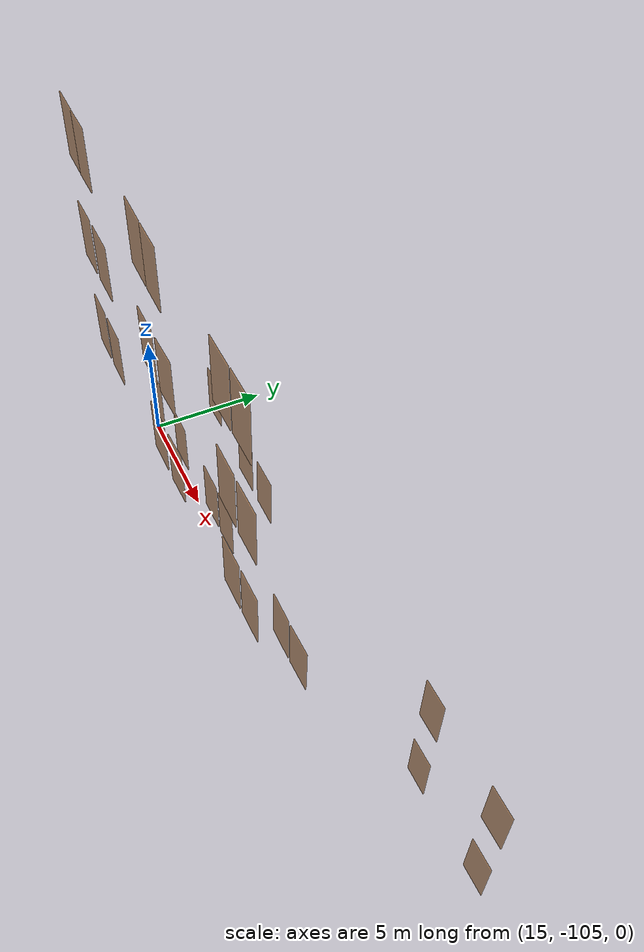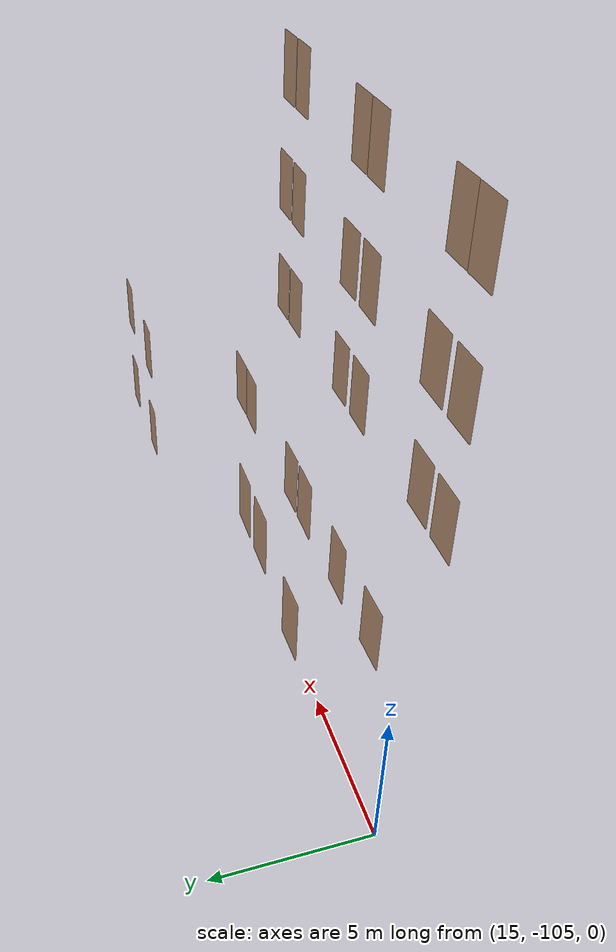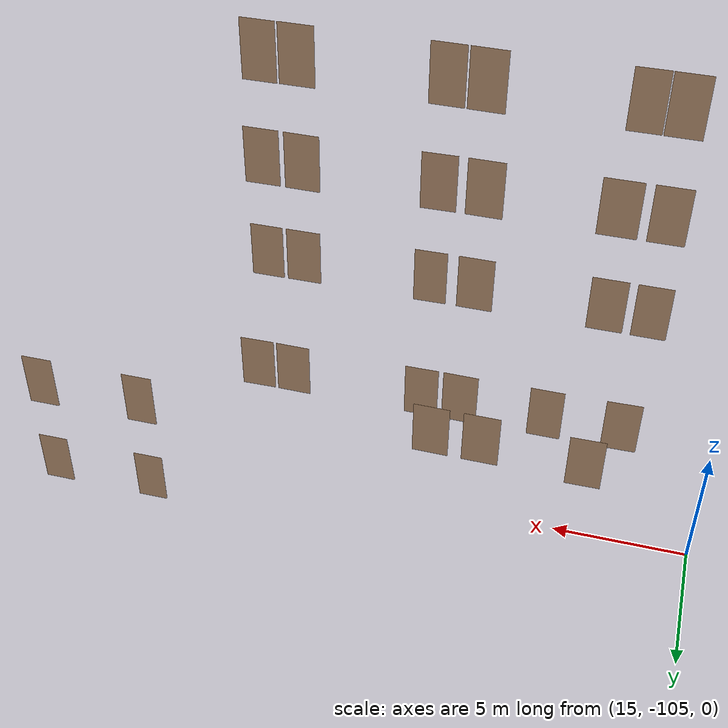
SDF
<sdf version="1.7">
 <world name="sim_world">
  <model name="Snull17">
   <pose>35.226505619236065 -102.68442668857105 0.0 0 0 3.141592653589793</pose>
   <link name="right">
    <pose>0 0 1.11 0 0 0</pose>
    <visual name="right_visual">
     <geometry><box><size>1.1178422880185204 0.03 2.2</size></box></geometry>
     <material>
      <ambient>0.5 0.25 0 0.6</ambient>
      <diffuse>0.5 0.25 0 0.6</diffuse>
      <pbr><metal><metalness>0.0</metalness></metal></pbr>
     </material>
    </visual>
    <collision name="right_collision">
     <geometry><box><size>1.1178422880185204 0.03 2.2</size></box></geometry>
     <surface><contact><collide_bitmask>0x02</collide_bitmask></contact></surface>
    </collision>
    <inertial>
     <mass>50.0</mass>
     <inertia><ixx>20.17041666666667</ixx><iyy>25.37321408701034</iyy><izz>5.210297420343669</izz></inertia>
    </inertial>
   </link>
   <joint name="right_joint" type="revolute">
    <parent>world</parent>
    <child>right</child>
    <axis><xyz>0 0 -1</xyz><limit><lower>0</lower><upper>1.57</upper></limit></axis>
    <pose>0.5639211440092602 0 0 0 0 0</pose>
   </joint>
   <plugin name="register_component" filename="libregister_component.so">
    <component name="Door">
     <v_max_door>0.5</v_max_door>
     <a_max_door>0.3</a_max_door>
     <a_nom_door>0.15</a_nom_door>
     <dx_min_door>0.01</dx_min_door>
     <f_max_door>500.0</f_max_door>
     <ros_interface>true</ros_interface>
     <door name="Snull17" type="SwingDoor" left_joint_name="empty_joint" right_joint_name="right_joint"/>
    </component>
   </plugin>
  </model>
  <model name="Snull18">
   <pose>39.10863234141057 -102.68442668857105 0.0 0 0 0.0</pose>
   <link name="right">
    <pose>0 0 1.11 0 0 0</pose>
    <visual name="right_visual">
     <geometry><box><size>1.1415886943210134 0.03 2.2</size></box></geometry>
     <material>
      <ambient>0.5 0.25 0 0.6</ambient>
      <diffuse>0.5 0.25 0 0.6</diffuse>
      <pbr><metal><metalness>0.0</metalness></metal></pbr>
     </material>
    </visual>
    <collision name="right_collision">
     <geometry><box><size>1.1415886943210134 0.03 2.2</size></box></geometry>
     <surface><contact><collide_bitmask>0x02</collide_bitmask></contact></surface>
    </collision>
    <inertial>
     <mass>50.0</mass>
     <inertia><ixx>20.17041666666667</ixx><iyy>25.596769779173155</iyy><izz>5.433853112506484</izz></inertia>
    </inertial>
   </link>
   <joint name="right_joint" type="revolute">
    <parent>world</parent>
    <child>right</child>
    <axis><xyz>0 0 1</xyz><limit><lower>0</lower><upper>1.57</upper></limit></axis>
    <pose>0.5757943471605067 0 0 0 0 0</pose>
   </joint>
   <plugin name="register_component" filename="libregister_component.so">
    <component name="Door">
     <v_max_door>0.5</v_max_door>
     <a_max_door>0.3</a_max_door>
     <a_nom_door>0.15</a_nom_door>
     <dx_min_door>0.01</dx_min_door>
     <f_max_door>500.0</f_max_door>
     <ros_interface>true</ros_interface>
     <door name="Snull18" type="SwingDoor" left_joint_name="empty_joint" right_joint_name="right_joint"/>
    </component>
   </plugin>
  </model>
  <model name="0null17">
   <pose>35.226505619236065 -102.68442668857105 4.0 0 0 3.141592653589793</pose>
   <link name="right">
    <pose>0 0 1.11 0 0 0</pose>
    <visual name="right_visual">
     <geometry><box><size>1.1178422880185204 0.03 2.2</size></box></geometry>
     <material>
      <ambient>0.5 0.25 0 0.6</ambient>
      <diffuse>0.5 0.25 0 0.6</diffuse>
      <pbr><metal><metalness>0.0</metalness></metal></pbr>
     </material>
    </visual>
    <collision name="right_collision">
     <geometry><box><size>1.1178422880185204 0.03 2.2</size></box></geometry>
     <surface><contact><collide_bitmask>0x02</collide_bitmask></contact></surface>
    </collision>
    <inertial>
     <mass>50.0</mass>
     <inertia><ixx>20.17041666666667</ixx><iyy>25.37321408701034</iyy><izz>5.210297420343669</izz></inertia>
    </inertial>
   </link>
   <joint name="right_joint" type="revolute">
    <parent>world</parent>
    <child>right</child>
    <axis><xyz>0 0 -1</xyz><limit><lower>0</lower><upper>1.57</upper></limit></axis>
    <pose>0.5639211440092602 0 0 0 0 0</pose>
   </joint>
   <plugin name="register_component" filename="libregister_component.so">
    <component name="Door">
     <v_max_door>0.5</v_max_door>
     <a_max_door>0.3</a_max_door>
     <a_nom_door>0.15</a_nom_door>
     <dx_min_door>0.01</dx_min_door>
     <f_max_door>500.0</f_max_door>
     <ros_interface>true</ros_interface>
     <door name="0null17" type="SwingDoor" left_joint_name="empty_joint" right_joint_name="right_joint"/>
    </component>
   </plugin>
  </model>
  <model name="0null18">
   <pose>39.10863234141057 -102.68442668857105 4.0 0 0 0.0</pose>
   <link name="right">
    <pose>0 0 1.11 0 0 0</pose>
    <visual name="right_visual">
     <geometry><box><size>1.1415886943210134 0.03 2.2</size></box></geometry>
     <material>
      <ambient>0.5 0.25 0 0.6</ambient>
      <diffuse>0.5 0.25 0 0.6</diffuse>
      <pbr><metal><metalness>0.0</metalness></metal></pbr>
     </material>
    </visual>
    <collision name="right_collision">
     <geometry><box><size>1.1415886943210134 0.03 2.2</size></box></geometry>
     <surface><contact><collide_bitmask>0x02</collide_bitmask></contact></surface>
    </collision>
    <inertial>
     <mass>50.0</mass>
     <inertia><ixx>20.17041666666667</ixx><iyy>25.596769779173155</iyy><izz>5.433853112506484</izz></inertia>
    </inertial>
   </link>
   <joint name="right_joint" type="revolute">
    <parent>world</parent>
    <child>right</child>
    <axis><xyz>0 0 1</xyz><limit><lower>0</lower><upper>1.57</upper></limit></axis>
    <pose>0.5757943471605067 0 0 0 0 0</pose>
   </joint>
   <plugin name="register_component" filename="libregister_component.so">
    <component name="Door">
     <v_max_door>0.5</v_max_door>
     <a_max_door>0.3</a_max_door>
     <a_nom_door>0.15</a_nom_door>
     <dx_min_door>0.01</dx_min_door>
     <f_max_door>500.0</f_max_door>
     <ros_interface>true</ros_interface>
     <door name="0null18" type="SwingDoor" left_joint_name="empty_joint" right_joint_name="right_joint"/>
    </component>
   </plugin>
  </model>
  <model name="0null66">
   <pose>19.16971586454093 -103.64021954224688 4.0 0 0 0.006799978698178858</pose>
   <link name="right">
    <pose>0 0 1.11 0 0 0</pose>
    <visual name="right_visual">
     <geometry><box><size>1.2419051338744223 0.03 2.2</size></box></geometry>
     <material>
      <ambient>0.5 0.25 0 0.6</ambient>
      <diffuse>0.5 0.25 0 0.6</diffuse>
      <pbr><metal><metalness>0.0</metalness></metal></pbr>
     </material>
    </visual>
    <collision name="right_collision">
     <geometry><box><size>1.2419051338744223 0.03 2.2</size></box></geometry>
     <surface><contact><collide_bitmask>0x02</collide_bitmask></contact></surface>
    </collision>
    <inertial>
     <mass>50.0</mass>
     <inertia><ixx>20.17041666666667</ixx><iyy>26.5930348397652</iyy><izz>6.430118173098528</izz></inertia>
    </inertial>
   </link>
   <joint name="right_joint" type="revolute">
    <parent>world</parent>
    <child>right</child>
    <axis><xyz>0 0 -1</xyz><limit><lower>0</lower><upper>1.57</upper></limit></axis>
    <pose>0.6259525669372111 0 0 0 0 0</pose>
   </joint>
   <plugin name="register_component" filename="libregister_component.so">
    <component name="Door">
     <v_max_door>0.5</v_max_door>
     <a_max_door>0.3</a_max_door>
     <a_nom_door>0.15</a_nom_door>
     <dx_min_door>0.01</dx_min_door>
     <f_max_door>500.0</f_max_door>
     <ros_interface>true</ros_interface>
     <door name="0null66" type="SwingDoor" left_joint_name="empty_joint" right_joint_name="right_joint"/>
    </component>
   </plugin>
  </model>
  <model name="0null67">
   <pose>22.862132696113193 -103.85111824664892 4.0 0 0 -0.007718906835754375</pose>
   <link name="right">
    <pose>0 0 1.11 0 0 0</pose>
    <visual name="right_visual">
     <geometry><box><size>1.3105411505811324 0.03 2.2</size></box></geometry>
     <material>
      <ambient>0.5 0.25 0 0.6</ambient>
      <diffuse>0.5 0.25 0 0.6</diffuse>
      <pbr><metal><metalness>0.0</metalness></metal></pbr>
     </material>
    </visual>
    <collision name="right_collision">
     <geometry><box><size>1.3105411505811324 0.03 2.2</size></box></geometry>
     <surface><contact><collide_bitmask>0x02</collide_bitmask></contact></surface>
    </collision>
    <inertial>
     <mass>50.0</mass>
     <inertia><ixx>20.17041666666667</ixx><iyy>27.322992114027166</iyy><izz>7.1600754473604935</izz></inertia>
    </inertial>
   </link>
   <joint name="right_joint" type="revolute">
    <parent>world</parent>
    <child>right</child>
    <axis><xyz>0 0 -1</xyz><limit><lower>0</lower><upper>1.57</upper></limit></axis>
    <pose>0.6602705752905662 0 0 0 0 0</pose>
   </joint>
   <plugin name="register_component" filename="libregister_component.so">
    <component name="Door">
     <v_max_door>0.5</v_max_door>
     <a_max_door>0.3</a_max_door>
     <a_nom_door>0.15</a_nom_door>
     <dx_min_door>0.01</dx_min_door>
     <f_max_door>500.0</f_max_door>
     <ros_interface>true</ros_interface>
     <door name="0null67" type="SwingDoor" left_joint_name="empty_joint" right_joint_name="right_joint"/>
    </component>
   </plugin>
  </model>
  <model name="0null68">
   <pose>24.66439532539296 -103.86896538849263 4.0 0 0 3.1298930987487013</pose>
   <link name="right">
    <pose>0 0 1.11 0 0 0</pose>
    <visual name="right_visual">
     <geometry><box><size>1.2952829252233309 0.03 2.2</size></box></geometry>
     <material>
      <ambient>0.5 0.25 0 0.6</ambient>
      <diffuse>0.5 0.25 0 0.6</diffuse>
      <pbr><metal><metalness>0.0</metalness></metal></pbr>
     </material>
    </visual>
    <collision name="right_collision">
     <geometry><box><size>1.2952829252233309 0.03 2.2</size></box></geometry>
     <surface><contact><collide_bitmask>0x02</collide_bitmask></contact></surface>
    </collision>
    <inertial>
     <mass>50.0</mass>
     <inertia><ixx>20.17041666666667</ixx><iyy>27.15732440156296</iyy><izz>6.994407734896288</izz></inertia>
    </inertial>
   </link>
   <joint name="right_joint" type="revolute">
    <parent>world</parent>
    <child>right</child>
    <axis><xyz>0 0 1</xyz><limit><lower>0</lower><upper>1.57</upper></limit></axis>
    <pose>0.6526414626116654 0 0 0 0 0</pose>
   </joint>
   <plugin name="register_component" filename="libregister_component.so">
    <component name="Door">
     <v_max_door>0.5</v_max_door>
     <a_max_door>0.3</a_max_door>
     <a_nom_door>0.15</a_nom_door>
     <dx_min_door>0.01</dx_min_door>
     <f_max_door>500.0</f_max_door>
     <ros_interface>true</ros_interface>
     <door name="0null68" type="SwingDoor" left_joint_name="empty_joint" right_joint_name="right_joint"/>
    </component>
   </plugin>
  </model>
  <model name="0null69">
   <pose>18.168259716984643 -105.75603927864682 4.0 0 0 0.01617173090646608</pose>
   <link name="right">
    <pose>0 0 1.11 0 0 0</pose>
    <visual name="right_visual">
     <geometry><box><size>1.25988938217987 0.03 2.2</size></box></geometry>
     <material>
      <ambient>0.5 0.25 0 0.6</ambient>
      <diffuse>0.5 0.25 0 0.6</diffuse>
      <pbr><metal><metalness>0.0</metalness></metal></pbr>
     </material>
    </visual>
    <collision name="right_collision">
     <geometry><box><size>1.25988938217987 0.03 2.2</size></box></geometry>
     <surface><contact><collide_bitmask>0x02</collide_bitmask></contact></surface>
    </collision>
    <inertial>
     <mass>50.0</mass>
     <inertia><ixx>20.17041666666667</ixx><iyy>26.780505230539898</iyy><izz>6.617588563873228</izz></inertia>
    </inertial>
   </link>
   <joint name="right_joint" type="revolute">
    <parent>world</parent>
    <child>right</child>
    <axis><xyz>0 0 1</xyz><limit><lower>0</lower><upper>1.57</upper></limit></axis>
    <pose>0.634944691089935 0 0 0 0 0</pose>
   </joint>
   <plugin name="register_component" filename="libregister_component.so">
    <component name="Door">
     <v_max_door>0.5</v_max_door>
     <a_max_door>0.3</a_max_door>
     <a_nom_door>0.15</a_nom_door>
     <dx_min_door>0.01</dx_min_door>
     <f_max_door>500.0</f_max_door>
     <ros_interface>true</ros_interface>
     <door name="0null69" type="SwingDoor" left_joint_name="empty_joint" right_joint_name="right_joint"/>
    </component>
   </plugin>
  </model>
  <model name="0null70">
   <pose>20.87564873240487 -105.74041369525438 4.0 0 0 -0.006083133474797345</pose>
   <link name="right">
    <pose>0 0 1.11 0 0 0</pose>
    <visual name="right_visual">
     <geometry><box><size>1.2114317019619647 0.03 2.2</size></box></geometry>
     <material>
      <ambient>0.5 0.25 0 0.6</ambient>
      <diffuse>0.5 0.25 0 0.6</diffuse>
      <pbr><metal><metalness>0.0</metalness></metal></pbr>
     </material>
    </visual>
    <collision name="right_collision">
     <geometry><box><size>1.2114317019619647 0.03 2.2</size></box></geometry>
     <surface><contact><collide_bitmask>0x02</collide_bitmask></contact></surface>
    </collision>
    <inertial>
     <mass>50.0</mass>
     <inertia><ixx>20.17041666666667</ixx><iyy>26.281528202160267</iyy><izz>6.118611535493594</izz></inertia>
    </inertial>
   </link>
   <joint name="right_joint" type="revolute">
    <parent>world</parent>
    <child>right</child>
    <axis><xyz>0 0 1</xyz><limit><lower>0</lower><upper>1.57</upper></limit></axis>
    <pose>0.6107158509809824 0 0 0 0 0</pose>
   </joint>
   <plugin name="register_component" filename="libregister_component.so">
    <component name="Door">
     <v_max_door>0.5</v_max_door>
     <a_max_door>0.3</a_max_door>
     <a_nom_door>0.15</a_nom_door>
     <dx_min_door>0.01</dx_min_door>
     <f_max_door>500.0</f_max_door>
     <ros_interface>true</ros_interface>
     <door name="0null70" type="SwingDoor" left_joint_name="empty_joint" right_joint_name="right_joint"/>
    </component>
   </plugin>
  </model>
  <model name="0null71">
   <pose>24.005600567524162 -105.73826681103677 4.0 0 0 -0.013497754728378332</pose>
   <link name="right">
    <pose>0 0 1.11 0 0 0</pose>
    <visual name="right_visual">
     <geometry><box><size>1.2735429760161787 0.03 2.2</size></box></geometry>
     <material>
      <ambient>0.5 0.25 0 0.6</ambient>
      <diffuse>0.5 0.25 0 0.6</diffuse>
      <pbr><metal><metalness>0.0</metalness></metal></pbr>
     </material>
    </visual>
    <collision name="right_collision">
     <geometry><box><size>1.2735429760161787 0.03 2.2</size></box></geometry>
     <surface><contact><collide_bitmask>0x02</collide_bitmask></contact></surface>
    </collision>
    <inertial>
     <mass>50.0</mass>
     <inertia><ixx>20.17041666666667</ixx><iyy>26.924632132333944</iyy><izz>6.7617154656672716</izz></inertia>
    </inertial>
   </link>
   <joint name="right_joint" type="revolute">
    <parent>world</parent>
    <child>right</child>
    <axis><xyz>0 0 1</xyz><limit><lower>0</lower><upper>1.57</upper></limit></axis>
    <pose>0.6417714880080894 0 0 0 0 0</pose>
   </joint>
   <plugin name="register_component" filename="libregister_component.so">
    <component name="Door">
     <v_max_door>0.5</v_max_door>
     <a_max_door>0.3</a_max_door>
     <a_nom_door>0.15</a_nom_door>
     <dx_min_door>0.01</dx_min_door>
     <f_max_door>500.0</f_max_door>
     <ros_interface>true</ros_interface>
     <door name="0null71" type="SwingDoor" left_joint_name="empty_joint" right_joint_name="right_joint"/>
    </component>
   </plugin>
  </model>
  <model name="0null72">
   <pose>25.436470895717413 -105.74222454542053 4.0 0 0 -3.133952271064675</pose>
   <link name="right">
    <pose>0 0 1.11 0 0 0</pose>
    <visual name="right_visual">
     <geometry><box><size>1.2214887313923475 0.03 2.2</size></box></geometry>
     <material>
      <ambient>0.5 0.25 0 0.6</ambient>
      <diffuse>0.5 0.25 0 0.6</diffuse>
      <pbr><metal><metalness>0.0</metalness></metal></pbr>
     </material>
    </visual>
    <collision name="right_collision">
     <geometry><box><size>1.2214887313923475 0.03 2.2</size></box></geometry>
     <surface><contact><collide_bitmask>0x02</collide_bitmask></contact></surface>
    </collision>
    <inertial>
     <mass>50.0</mass>
     <inertia><ixx>20.17041666666667</ixx><iyy>26.38347800382703</iyy><izz>6.22056133716036</izz></inertia>
    </inertial>
   </link>
   <joint name="right_joint" type="revolute">
    <parent>world</parent>
    <child>right</child>
    <axis><xyz>0 0 -1</xyz><limit><lower>0</lower><upper>1.57</upper></limit></axis>
    <pose>0.6157443656961737 0 0 0 0 0</pose>
   </joint>
   <plugin name="register_component" filename="libregister_component.so">
    <component name="Door">
     <v_max_door>0.5</v_max_door>
     <a_max_door>0.3</a_max_door>
     <a_nom_door>0.15</a_nom_door>
     <dx_min_door>0.01</dx_min_door>
     <f_max_door>500.0</f_max_door>
     <ros_interface>true</ros_interface>
     <door name="0null72" type="SwingDoor" left_joint_name="empty_joint" right_joint_name="right_joint"/>
    </component>
   </plugin>
  </model>
  <model name="0null73">
   <pose>30.30814322518013 -105.73806145689423 4.0 0 0 -0.013854213525104088</pose>
   <link name="right">
    <pose>0 0 1.11 0 0 0</pose>
    <visual name="right_visual">
     <geometry><box><size>1.248605645767914 0.03 2.2</size></box></geometry>
     <material>
      <ambient>0.5 0.25 0 0.6</ambient>
      <diffuse>0.5 0.25 0 0.6</diffuse>
      <pbr><metal><metalness>0.0</metalness></metal></pbr>
     </material>
    </visual>
    <collision name="right_collision">
     <geometry><box><size>1.248605645767914 0.03 2.2</size></box></geometry>
     <surface><contact><collide_bitmask>0x02</collide_bitmask></contact></surface>
    </collision>
    <inertial>
     <mass>50.0</mass>
     <inertia><ixx>20.17041666666667</ixx><iyy>26.662566911014626</iyy><izz>6.499650244347957</izz></inertia>
    </inertial>
   </link>
   <joint name="right_joint" type="revolute">
    <parent>world</parent>
    <child>right</child>
    <axis><xyz>0 0 1</xyz><limit><lower>0</lower><upper>1.57</upper></limit></axis>
    <pose>0.629302822883957 0 0 0 0 0</pose>
   </joint>
   <plugin name="register_component" filename="libregister_component.so">
    <component name="Door">
     <v_max_door>0.5</v_max_door>
     <a_max_door>0.3</a_max_door>
     <a_nom_door>0.15</a_nom_door>
     <dx_min_door>0.01</dx_min_door>
     <f_max_door>500.0</f_max_door>
     <ros_interface>true</ros_interface>
     <door name="0null73" type="SwingDoor" left_joint_name="empty_joint" right_joint_name="right_joint"/>
    </component>
   </plugin>
  </model>
  <model name="0null74">
   <pose>31.677556659074767 -105.73931225030796 4.0 0 0 -3.1298945166294154</pose>
   <link name="right">
    <pose>0 0 1.11 0 0 0</pose>
    <visual name="right_visual">
     <geometry><box><size>1.2539478870004306 0.03 2.2</size></box></geometry>
     <material>
      <ambient>0.5 0.25 0 0.6</ambient>
      <diffuse>0.5 0.25 0 0.6</diffuse>
      <pbr><metal><metalness>0.0</metalness></metal></pbr>
     </material>
    </visual>
    <collision name="right_collision">
     <geometry><box><size>1.2539478870004306 0.03 2.2</size></box></geometry>
     <surface><contact><collide_bitmask>0x02</collide_bitmask></contact></surface>
    </collision>
    <inertial>
     <mass>50.0</mass>
     <inertia><ixx>20.17041666666667</ixx><iyy>26.718272097136857</iyy><izz>6.555355430470185</izz></inertia>
    </inertial>
   </link>
   <joint name="right_joint" type="revolute">
    <parent>world</parent>
    <child>right</child>
    <axis><xyz>0 0 -1</xyz><limit><lower>0</lower><upper>1.57</upper></limit></axis>
    <pose>0.6319739435002153 0 0 0 0 0</pose>
   </joint>
   <plugin name="register_component" filename="libregister_component.so">
    <component name="Door">
     <v_max_door>0.5</v_max_door>
     <a_max_door>0.3</a_max_door>
     <a_nom_door>0.15</a_nom_door>
     <dx_min_door>0.01</dx_min_door>
     <f_max_door>500.0</f_max_door>
     <ros_interface>true</ros_interface>
     <door name="0null74" type="SwingDoor" left_joint_name="empty_joint" right_joint_name="right_joint"/>
    </component>
   </plugin>
  </model>
  <model name="1null69">
   <pose>17.828062577007792 -107.38991151103306 8.0 0 0 -0.010975243007221662</pose>
   <link name="right">
    <pose>0 0 1.11 0 0 0</pose>
    <visual name="right_visual">
     <geometry><box><size>1.2215269588517066 0.03 2.2</size></box></geometry>
     <material>
      <ambient>0.5 0.25 0 0.6</ambient>
      <diffuse>0.5 0.25 0 0.6</diffuse>
      <pbr><metal><metalness>0.0</metalness></metal></pbr>
     </material>
    </visual>
    <collision name="right_collision">
     <geometry><box><size>1.2215269588517066 0.03 2.2</size></box></geometry>
     <surface><contact><collide_bitmask>0x02</collide_bitmask></contact></surface>
    </collision>
    <inertial>
     <mass>50.0</mass>
     <inertia><ixx>20.17041666666667</ixx><iyy>26.38386713000625</iyy><izz>6.2209504633395785</izz></inertia>
    </inertial>
   </link>
   <joint name="right_joint" type="revolute">
    <parent>world</parent>
    <child>right</child>
    <axis><xyz>0 0 1</xyz><limit><lower>0</lower><upper>1.57</upper></limit></axis>
    <pose>0.6157634794258533 0 0 0 0 0</pose>
   </joint>
   <plugin name="register_component" filename="libregister_component.so">
    <component name="Door">
     <v_max_door>0.5</v_max_door>
     <a_max_door>0.3</a_max_door>
     <a_nom_door>0.15</a_nom_door>
     <dx_min_door>0.01</dx_min_door>
     <f_max_door>500.0</f_max_door>
     <ros_interface>true</ros_interface>
     <door name="1null69" type="SwingDoor" left_joint_name="empty_joint" right_joint_name="right_joint"/>
    </component>
   </plugin>
  </model>
  <model name="1null70">
   <pose>19.362916775566582 -107.40564910577598 8.0 0 0 -0.007024894642491466</pose>
   <link name="right">
    <pose>0 0 1.11 0 0 0</pose>
    <visual name="right_visual">
     <geometry><box><size>1.270918735887897 0.03 2.2</size></box></geometry>
     <material>
      <ambient>0.5 0.25 0 0.6</ambient>
      <diffuse>0.5 0.25 0 0.6</diffuse>
      <pbr><metal><metalness>0.0</metalness></metal></pbr>
     </material>
    </visual>
    <collision name="right_collision">
     <geometry><box><size>1.270918735887897 0.03 2.2</size></box></geometry>
     <surface><contact><collide_bitmask>0x02</collide_bitmask></contact></surface>
    </collision>
    <inertial>
     <mass>50.0</mass>
     <inertia><ixx>20.17041666666667</ixx><iyy>26.896810138462047</iyy><izz>6.733893471795376</izz></inertia>
    </inertial>
   </link>
   <joint name="right_joint" type="revolute">
    <parent>world</parent>
    <child>right</child>
    <axis><xyz>0 0 -1</xyz><limit><lower>0</lower><upper>1.57</upper></limit></axis>
    <pose>0.6404593679439485 0 0 0 0 0</pose>
   </joint>
   <plugin name="register_component" filename="libregister_component.so">
    <component name="Door">
     <v_max_door>0.5</v_max_door>
     <a_max_door>0.3</a_max_door>
     <a_nom_door>0.15</a_nom_door>
     <dx_min_door>0.01</dx_min_door>
     <f_max_door>500.0</f_max_door>
     <ros_interface>true</ros_interface>
     <door name="1null70" type="SwingDoor" left_joint_name="empty_joint" right_joint_name="right_joint"/>
    </component>
   </plugin>
  </model>
  <model name="1null71">
   <pose>23.987716088563626 -107.40143001157443 8.0 0 0 -0.008761052729590007</pose>
   <link name="right">
    <pose>0 0 1.11 0 0 0</pose>
    <visual name="right_visual">
     <geometry><box><size>1.2813164062270233 0.03 2.2</size></box></geometry>
     <material>
      <ambient>0.5 0.25 0 0.6</ambient>
      <diffuse>0.5 0.25 0 0.6</diffuse>
      <pbr><metal><metalness>0.0</metalness></metal></pbr>
     </material>
    </visual>
    <collision name="right_collision">
     <geometry><box><size>1.2813164062270233 0.03 2.2</size></box></geometry>
     <surface><contact><collide_bitmask>0x02</collide_bitmask></contact></surface>
    </collision>
    <inertial>
     <mass>50.0</mass>
     <inertia><ixx>20.17041666666667</ixx><iyy>27.00738222027723</iyy><izz>6.844465553610559</izz></inertia>
    </inertial>
   </link>
   <joint name="right_joint" type="revolute">
    <parent>world</parent>
    <child>right</child>
    <axis><xyz>0 0 1</xyz><limit><lower>0</lower><upper>1.57</upper></limit></axis>
    <pose>0.6456582031135116 0 0 0 0 0</pose>
   </joint>
   <plugin name="register_component" filename="libregister_component.so">
    <component name="Door">
     <v_max_door>0.5</v_max_door>
     <a_max_door>0.3</a_max_door>
     <a_nom_door>0.15</a_nom_door>
     <dx_min_door>0.01</dx_min_door>
     <f_max_door>500.0</f_max_door>
     <ros_interface>true</ros_interface>
     <door name="1null71" type="SwingDoor" left_joint_name="empty_joint" right_joint_name="right_joint"/>
    </component>
   </plugin>
  </model>
  <model name="1null72">
   <pose>25.6140275547922 -107.40527573460771 8.0 0 0 -3.1319032178558626</pose>
   <link name="right">
    <pose>0 0 1.11 0 0 0</pose>
    <visual name="right_visual">
     <geometry><box><size>1.1730074054445625 0.03 2.2</size></box></geometry>
     <material>
      <ambient>0.5 0.25 0 0.6</ambient>
      <diffuse>0.5 0.25 0 0.6</diffuse>
      <pbr><metal><metalness>0.0</metalness></metal></pbr>
     </material>
    </visual>
    <collision name="right_collision">
     <geometry><box><size>1.1730074054445625 0.03 2.2</size></box></geometry>
     <surface><contact><collide_bitmask>0x02</collide_bitmask></contact></surface>
    </collision>
    <inertial>
     <mass>50.0</mass>
     <inertia><ixx>20.17041666666667</ixx><iyy>25.899776555115775</iyy><izz>5.736859888449102</izz></inertia>
    </inertial>
   </link>
   <joint name="right_joint" type="revolute">
    <parent>world</parent>
    <child>right</child>
    <axis><xyz>0 0 -1</xyz><limit><lower>0</lower><upper>1.57</upper></limit></axis>
    <pose>0.5915037027222813 0 0 0 0 0</pose>
   </joint>
   <plugin name="register_component" filename="libregister_component.so">
    <component name="Door">
     <v_max_door>0.5</v_max_door>
     <a_max_door>0.3</a_max_door>
     <a_nom_door>0.15</a_nom_door>
     <dx_min_door>0.01</dx_min_door>
     <f_max_door>500.0</f_max_door>
     <ros_interface>true</ros_interface>
     <door name="1null72" type="SwingDoor" left_joint_name="empty_joint" right_joint_name="right_joint"/>
    </component>
   </plugin>
  </model>
  <model name="1null73">
   <pose>30.292797670163893 -107.40092596049725 8.0 0 0 0.0</pose>
   <link name="right">
    <pose>0 0 1.11 0 0 0</pose>
    <visual name="right_visual">
     <geometry><box><size>1.2496049733039578 0.03 2.2</size></box></geometry>
     <material>
      <ambient>0.5 0.25 0 0.6</ambient>
      <diffuse>0.5 0.25 0 0.6</diffuse>
      <pbr><metal><metalness>0.0</metalness></metal></pbr>
     </material>
    </visual>
    <collision name="right_collision">
     <geometry><box><size>1.2496049733039578 0.03 2.2</size></box></geometry>
     <surface><contact><collide_bitmask>0x02</collide_bitmask></contact></surface>
    </collision>
    <inertial>
     <mass>50.0</mass>
     <inertia><ixx>20.17041666666667</ixx><iyy>26.672969122108274</iyy><izz>6.510052455441604</izz></inertia>
    </inertial>
   </link>
   <joint name="right_joint" type="revolute">
    <parent>world</parent>
    <child>right</child>
    <axis><xyz>0 0 1</xyz><limit><lower>0</lower><upper>1.57</upper></limit></axis>
    <pose>0.6298024866519789 0 0 0 0 0</pose>
   </joint>
   <plugin name="register_component" filename="libregister_component.so">
    <component name="Door">
     <v_max_door>0.5</v_max_door>
     <a_max_door>0.3</a_max_door>
     <a_nom_door>0.15</a_nom_door>
     <dx_min_door>0.01</dx_min_door>
     <f_max_door>500.0</f_max_door>
     <ros_interface>true</ros_interface>
     <door name="1null73" type="SwingDoor" left_joint_name="empty_joint" right_joint_name="right_joint"/>
    </component>
   </plugin>
  </model>
  <model name="1null74">
   <pose>31.659056117686575 -107.3942612851435 8.0 0 0 3.1411887638425706</pose>
   <link name="right">
    <pose>0 0 1.11 0 0 0</pose>
    <visual name="right_visual">
     <geometry><box><size>1.1917698773581549 0.03 2.2</size></box></geometry>
     <material>
      <ambient>0.5 0.25 0 0.6</ambient>
      <diffuse>0.5 0.25 0 0.6</diffuse>
      <pbr><metal><metalness>0.0</metalness></metal></pbr>
     </material>
    </visual>
    <collision name="right_collision">
     <geometry><box><size>1.1917698773581549 0.03 2.2</size></box></geometry>
     <surface><contact><collide_bitmask>0x02</collide_bitmask></contact></surface>
    </collision>
    <inertial>
     <mass>50.0</mass>
     <inertia><ixx>20.17041666666667</ixx><iyy>26.084647669076134</iyy><izz>5.921731002409464</izz></inertia>
    </inertial>
   </link>
   <joint name="right_joint" type="revolute">
    <parent>world</parent>
    <child>right</child>
    <axis><xyz>0 0 -1</xyz><limit><lower>0</lower><upper>1.57</upper></limit></axis>
    <pose>0.6008849386790774 0 0 0 0 0</pose>
   </joint>
   <plugin name="register_component" filename="libregister_component.so">
    <component name="Door">
     <v_max_door>0.5</v_max_door>
     <a_max_door>0.3</a_max_door>
     <a_nom_door>0.15</a_nom_door>
     <dx_min_door>0.01</dx_min_door>
     <f_max_door>500.0</f_max_door>
     <ros_interface>true</ros_interface>
     <door name="1null74" type="SwingDoor" left_joint_name="empty_joint" right_joint_name="right_joint"/>
    </component>
   </plugin>
  </model>
  <model name="2null69">
   <pose>17.837172833513783 -107.4098308628607 12.0 0 0 -0.003246741838371214</pose>
   <link name="right">
    <pose>0 0 1.11 0 0 0</pose>
    <visual name="right_visual">
     <geometry><box><size>1.2434882928568716 0.03 2.2</size></box></geometry>
     <material>
      <ambient>0.5 0.25 0 0.6</ambient>
      <diffuse>0.5 0.25 0 0.6</diffuse>
      <pbr><metal><metalness>0.0</metalness></metal></pbr>
     </material>
    </visual>
    <collision name="right_collision">
     <geometry><box><size>1.2434882928568716 0.03 2.2</size></box></geometry>
     <surface><contact><collide_bitmask>0x02</collide_bitmask></contact></surface>
    </collision>
    <inertial>
     <mass>50.0</mass>
     <inertia><ixx>20.17041666666667</ixx><iyy>26.609429726967072</iyy><izz>6.446513060300403</izz></inertia>
    </inertial>
   </link>
   <joint name="right_joint" type="revolute">
    <parent>world</parent>
    <child>right</child>
    <axis><xyz>0 0 1</xyz><limit><lower>0</lower><upper>1.57</upper></limit></axis>
    <pose>0.6267441464284358 0 0 0 0 0</pose>
   </joint>
   <plugin name="register_component" filename="libregister_component.so">
    <component name="Door">
     <v_max_door>0.5</v_max_door>
     <a_max_door>0.3</a_max_door>
     <a_nom_door>0.15</a_nom_door>
     <dx_min_door>0.01</dx_min_door>
     <f_max_door>500.0</f_max_door>
     <ros_interface>true</ros_interface>
     <door name="2null69" type="SwingDoor" left_joint_name="empty_joint" right_joint_name="right_joint"/>
    </component>
   </plugin>
  </model>
  <model name="2null70">
   <pose>19.447093305454942 -107.41352723742665 12.0 0 0 -0.005942042390492167</pose>
   <link name="right">
    <pose>0 0 1.11 0 0 0</pose>
    <visual name="right_visual">
     <geometry><box><size>1.3535382411789674 0.03 2.2</size></box></geometry>
     <material>
      <ambient>0.5 0.25 0 0.6</ambient>
      <diffuse>0.5 0.25 0 0.6</diffuse>
      <pbr><metal><metalness>0.0</metalness></metal></pbr>
     </material>
    </visual>
    <collision name="right_collision">
     <geometry><box><size>1.3535382411789674 0.03 2.2</size></box></geometry>
     <surface><contact><collide_bitmask>0x02</collide_bitmask></contact></surface>
    </collision>
    <inertial>
     <mass>50.0</mass>
     <inertia><ixx>20.17041666666667</ixx><iyy>27.800274043057726</iyy><izz>7.637357376391052</izz></inertia>
    </inertial>
   </link>
   <joint name="right_joint" type="revolute">
    <parent>world</parent>
    <child>right</child>
    <axis><xyz>0 0 -1</xyz><limit><lower>0</lower><upper>1.57</upper></limit></axis>
    <pose>0.6817691205894837 0 0 0 0 0</pose>
   </joint>
   <plugin name="register_component" filename="libregister_component.so">
    <component name="Door">
     <v_max_door>0.5</v_max_door>
     <a_max_door>0.3</a_max_door>
     <a_nom_door>0.15</a_nom_door>
     <dx_min_door>0.01</dx_min_door>
     <f_max_door>500.0</f_max_door>
     <ros_interface>true</ros_interface>
     <door name="2null70" type="SwingDoor" left_joint_name="empty_joint" right_joint_name="right_joint"/>
    </component>
   </plugin>
  </model>
  <model name="2null71">
   <pose>23.89599746107604 -107.41729828622627 12.0 0 0 -0.010918186025135083</pose>
   <link name="right">
    <pose>0 0 1.11 0 0 0</pose>
    <visual name="right_visual">
     <geometry><box><size>1.272419713259015 0.03 2.2</size></box></geometry>
     <material>
      <ambient>0.5 0.25 0 0.6</ambient>
      <diffuse>0.5 0.25 0 0.6</diffuse>
      <pbr><metal><metalness>0.0</metalness></metal></pbr>
     </material>
    </visual>
    <collision name="right_collision">
     <geometry><box><size>1.272419713259015 0.03 2.2</size></box></geometry>
     <surface><contact><collide_bitmask>0x02</collide_bitmask></contact></surface>
    </collision>
    <inertial>
     <mass>50.0</mass>
     <inertia><ixx>20.17041666666667</ixx><iyy>26.91271636120898</iyy><izz>6.7497996945423075</izz></inertia>
    </inertial>
   </link>
   <joint name="right_joint" type="revolute">
    <parent>world</parent>
    <child>right</child>
    <axis><xyz>0 0 1</xyz><limit><lower>0</lower><upper>1.57</upper></limit></axis>
    <pose>0.6412098566295075 0 0 0 0 0</pose>
   </joint>
   <plugin name="register_component" filename="libregister_component.so">
    <component name="Door">
     <v_max_door>0.5</v_max_door>
     <a_max_door>0.3</a_max_door>
     <a_nom_door>0.15</a_nom_door>
     <dx_min_door>0.01</dx_min_door>
     <f_max_door>500.0</f_max_door>
     <ros_interface>true</ros_interface>
     <door name="2null71" type="SwingDoor" left_joint_name="empty_joint" right_joint_name="right_joint"/>
    </component>
   </plugin>
  </model>
  <model name="2null72">
   <pose>25.470914385991097 -107.41378859724445 12.0 0 0 -3.1247887669162013</pose>
   <link name="right">
    <pose>0 0 1.11 0 0 0</pose>
    <visual name="right_visual">
     <geometry><box><size>1.2410073705488442 0.03 2.2</size></box></geometry>
     <material>
      <ambient>0.5 0.25 0 0.6</ambient>
      <diffuse>0.5 0.25 0 0.6</diffuse>
      <pbr><metal><metalness>0.0</metalness></metal></pbr>
     </material>
    </visual>
    <collision name="right_collision">
     <geometry><box><size>1.2410073705488442 0.03 2.2</size></box></geometry>
     <surface><contact><collide_bitmask>0x02</collide_bitmask></contact></surface>
    </collision>
    <inertial>
     <mass>50.0</mass>
     <inertia><ixx>20.17041666666667</ixx><iyy>26.58374705731899</iyy><izz>6.420830390652319</izz></inertia>
    </inertial>
   </link>
   <joint name="right_joint" type="revolute">
    <parent>world</parent>
    <child>right</child>
    <axis><xyz>0 0 -1</xyz><limit><lower>0</lower><upper>1.57</upper></limit></axis>
    <pose>0.6255036852744221 0 0 0 0 0</pose>
   </joint>
   <plugin name="register_component" filename="libregister_component.so">
    <component name="Door">
     <v_max_door>0.5</v_max_door>
     <a_max_door>0.3</a_max_door>
     <a_nom_door>0.15</a_nom_door>
     <dx_min_door>0.01</dx_min_door>
     <f_max_door>500.0</f_max_door>
     <ros_interface>true</ros_interface>
     <door name="2null72" type="SwingDoor" left_joint_name="empty_joint" right_joint_name="right_joint"/>
    </component>
   </plugin>
  </model>
  <model name="2null73">
   <pose>30.242896613523484 -107.38625247358392 12.0 0 0 -0.0140231642660697</pose>
   <link name="right">
    <pose>0 0 1.11 0 0 0</pose>
    <visual name="right_visual">
     <geometry><box><size>1.2520813032294913 0.03 2.2</size></box></geometry>
     <material>
      <ambient>0.5 0.25 0 0.6</ambient>
      <diffuse>0.5 0.25 0 0.6</diffuse>
      <pbr><metal><metalness>0.0</metalness></metal></pbr>
     </material>
    </visual>
    <collision name="right_collision">
     <geometry><box><size>1.2520813032294913 0.03 2.2</size></box></geometry>
     <surface><contact><collide_bitmask>0x02</collide_bitmask></contact></surface>
    </collision>
    <inertial>
     <mass>50.0</mass>
     <inertia><ixx>20.17041666666667</ixx><iyy>26.698781624570262</iyy><izz>6.535864957903589</izz></inertia>
    </inertial>
   </link>
   <joint name="right_joint" type="revolute">
    <parent>world</parent>
    <child>right</child>
    <axis><xyz>0 0 1</xyz><limit><lower>0</lower><upper>1.57</upper></limit></axis>
    <pose>0.6310406516147457 0 0 0 0 0</pose>
   </joint>
   <plugin name="register_component" filename="libregister_component.so">
    <component name="Door">
     <v_max_door>0.5</v_max_door>
     <a_max_door>0.3</a_max_door>
     <a_nom_door>0.15</a_nom_door>
     <dx_min_door>0.01</dx_min_door>
     <f_max_door>500.0</f_max_door>
     <ros_interface>true</ros_interface>
     <door name="2null73" type="SwingDoor" left_joint_name="empty_joint" right_joint_name="right_joint"/>
    </component>
   </plugin>
  </model>
  <model name="2null74">
   <pose>31.684165328753295 -107.39954448717464 12.0 0 0 3.141592653589793</pose>
   <link name="right">
    <pose>0 0 1.11 0 0 0</pose>
    <visual name="right_visual">
     <geometry><box><size>1.256400328566629 0.03 2.2</size></box></geometry>
     <material>
      <ambient>0.5 0.25 0 0.6</ambient>
      <diffuse>0.5 0.25 0 0.6</diffuse>
      <pbr><metal><metalness>0.0</metalness></metal></pbr>
     </material>
    </visual>
    <collision name="right_collision">
     <geometry><box><size>1.256400328566629 0.03 2.2</size></box></geometry>
     <surface><contact><collide_bitmask>0x02</collide_bitmask></contact></surface>
    </collision>
    <inertial>
     <mass>50.0</mass>
     <inertia><ixx>20.17041666666667</ixx><iyy>26.743924106759724</iyy><izz>6.581007440093055</izz></inertia>
    </inertial>
   </link>
   <joint name="right_joint" type="revolute">
    <parent>world</parent>
    <child>right</child>
    <axis><xyz>0 0 -1</xyz><limit><lower>0</lower><upper>1.57</upper></limit></axis>
    <pose>0.6332001642833145 0 0 0 0 0</pose>
   </joint>
   <plugin name="register_component" filename="libregister_component.so">
    <component name="Door">
     <v_max_door>0.5</v_max_door>
     <a_max_door>0.3</a_max_door>
     <a_nom_door>0.15</a_nom_door>
     <dx_min_door>0.01</dx_min_door>
     <f_max_door>500.0</f_max_door>
     <ros_interface>true</ros_interface>
     <door name="2null74" type="SwingDoor" left_joint_name="empty_joint" right_joint_name="right_joint"/>
    </component>
   </plugin>
  </model>
  <model name="nulldfs">
   <pose>17.91257284263939 -107.42051043806347 16.0 0 0 -0.014800913976687155</pose>
   <link name="right">
    <pose>0 0 1.11 0 0 0</pose>
    <visual name="right_visual">
     <geometry><box><size>1.2011286486212083 0.03 2.2</size></box></geometry>
     <material>
      <ambient>0.5 0.25 0 0.6</ambient>
      <diffuse>0.5 0.25 0 0.6</diffuse>
      <pbr><metal><metalness>0.0</metalness></metal></pbr>
     </material>
    </visual>
    <collision name="right_collision">
     <geometry><box><size>1.2011286486212083 0.03 2.2</size></box></geometry>
     <surface><contact><collide_bitmask>0x02</collide_bitmask></contact></surface>
    </collision>
    <inertial>
     <mass>50.0</mass>
     <inertia><ixx>20.17041666666667</ixx><iyy>26.177958460577546</iyy><izz>6.015041793910875</izz></inertia>
    </inertial>
   </link>
   <joint name="right_joint" type="revolute">
    <parent>world</parent>
    <child>right</child>
    <axis><xyz>0 0 1</xyz><limit><lower>0</lower><upper>1.57</upper></limit></axis>
    <pose>0.6055643243106041 0 0 0 0 0</pose>
   </joint>
   <plugin name="register_component" filename="libregister_component.so">
    <component name="Door">
     <v_max_door>0.5</v_max_door>
     <a_max_door>0.3</a_max_door>
     <a_nom_door>0.15</a_nom_door>
     <dx_min_door>0.01</dx_min_door>
     <f_max_door>500.0</f_max_door>
     <ros_interface>true</ros_interface>
     <door name="nulldfs" type="SwingDoor" left_joint_name="empty_joint" right_joint_name="right_joint"/>
    </component>
   </plugin>
  </model>
  <model name="nullthr">
   <pose>19.11735488794361 -107.4374301297909 16.0 0 0 3.1381487016976997</pose>
   <link name="right">
    <pose>0 0 1.11 0 0 0</pose>
    <visual name="right_visual">
     <geometry><box><size>1.1289210643072853 0.03 2.2</size></box></geometry>
     <material>
      <ambient>0.5 0.25 0 0.6</ambient>
      <diffuse>0.5 0.25 0 0.6</diffuse>
      <pbr><metal><metalness>0.0</metalness></metal></pbr>
     </material>
    </visual>
    <collision name="right_collision">
     <geometry><box><size>1.1289210643072853 0.03 2.2</size></box></geometry>
     <surface><contact><collide_bitmask>0x02</collide_bitmask></contact></surface>
    </collision>
    <inertial>
     <mass>50.0</mass>
     <inertia><ixx>20.17041666666667</ixx><iyy>25.47692820598623</iyy><izz>5.314011539319558</izz></inertia>
    </inertial>
   </link>
   <joint name="right_joint" type="revolute">
    <parent>world</parent>
    <child>right</child>
    <axis><xyz>0 0 -1</xyz><limit><lower>0</lower><upper>1.57</upper></limit></axis>
    <pose>0.5694605321536427 0 0 0 0 0</pose>
   </joint>
   <plugin name="register_component" filename="libregister_component.so">
    <component name="Door">
     <v_max_door>0.5</v_max_door>
     <a_max_door>0.3</a_max_door>
     <a_nom_door>0.15</a_nom_door>
     <dx_min_door>0.01</dx_min_door>
     <f_max_door>500.0</f_max_door>
     <ros_interface>true</ros_interface>
     <door name="nullthr" type="SwingDoor" left_joint_name="empty_joint" right_joint_name="right_joint"/>
    </component>
   </plugin>
  </model>
  <model name="nullth">
   <pose>24.07485700507805 -107.43292277358572 16.0 0 0 -0.022816653104923715</pose>
   <link name="right">
    <pose>0 0 1.11 0 0 0</pose>
    <visual name="right_visual">
     <geometry><box><size>1.2355698029881976 0.03 2.2</size></box></geometry>
     <material>
      <ambient>0.5 0.25 0 0.6</ambient>
      <diffuse>0.5 0.25 0 0.6</diffuse>
      <pbr><metal><metalness>0.0</metalness></metal></pbr>
     </material>
    </visual>
    <collision name="right_collision">
     <geometry><box><size>1.2355698029881976 0.03 2.2</size></box></geometry>
     <surface><contact><collide_bitmask>0x02</collide_bitmask></contact></surface>
    </collision>
    <inertial>
     <mass>50.0</mass>
     <inertia><ixx>20.17041666666667</ixx><iyy>26.527636408567894</iyy><izz>6.364719741901222</izz></inertia>
    </inertial>
   </link>
   <joint name="right_joint" type="revolute">
    <parent>world</parent>
    <child>right</child>
    <axis><xyz>0 0 1</xyz><limit><lower>0</lower><upper>1.57</upper></limit></axis>
    <pose>0.6227849014940988 0 0 0 0 0</pose>
   </joint>
   <plugin name="register_component" filename="libregister_component.so">
    <component name="Door">
     <v_max_door>0.5</v_max_door>
     <a_max_door>0.3</a_max_door>
     <a_nom_door>0.15</a_nom_door>
     <dx_min_door>0.01</dx_min_door>
     <f_max_door>500.0</f_max_door>
     <ros_interface>true</ros_interface>
     <door name="nullth" type="SwingDoor" left_joint_name="empty_joint" right_joint_name="right_joint"/>
    </component>
   </plugin>
  </model>
  <model name="nullhre">
   <pose>25.361882747244213 -107.45631577424227 16.0 0 0 3.126272378538982</pose>
   <link name="right">
    <pose>0 0 1.11 0 0 0</pose>
    <visual name="right_visual">
     <geometry><box><size>1.1886721110577145 0.03 2.2</size></box></geometry>
     <material>
      <ambient>0.5 0.25 0 0.6</ambient>
      <diffuse>0.5 0.25 0 0.6</diffuse>
      <pbr><metal><metalness>0.0</metalness></metal></pbr>
     </material>
    </visual>
    <collision name="right_collision">
     <geometry><box><size>1.1886721110577145 0.03 2.2</size></box></geometry>
     <surface><contact><collide_bitmask>0x02</collide_bitmask></contact></surface>
    </collision>
    <inertial>
     <mass>50.0</mass>
     <inertia><ixx>20.17041666666667</ixx><iyy>26.05392244836002</iyy><izz>5.891005781693348</izz></inertia>
    </inertial>
   </link>
   <joint name="right_joint" type="revolute">
    <parent>world</parent>
    <child>right</child>
    <axis><xyz>0 0 -1</xyz><limit><lower>0</lower><upper>1.57</upper></limit></axis>
    <pose>0.5993360555288573 0 0 0 0 0</pose>
   </joint>
   <plugin name="register_component" filename="libregister_component.so">
    <component name="Door">
     <v_max_door>0.5</v_max_door>
     <a_max_door>0.3</a_max_door>
     <a_nom_door>0.15</a_nom_door>
     <dx_min_door>0.01</dx_min_door>
     <f_max_door>500.0</f_max_door>
     <ros_interface>true</ros_interface>
     <door name="nullhre" type="SwingDoor" left_joint_name="empty_joint" right_joint_name="right_joint"/>
    </component>
   </plugin>
  </model>
  <model name="nullat">
   <pose>30.329602350473614 -107.42898157631114 16.0 0 0 -0.008285394694345997</pose>
   <link name="right">
    <pose>0 0 1.11 0 0 0</pose>
    <visual name="right_visual">
     <geometry><box><size>1.2227144814454463 0.03 2.2</size></box></geometry>
     <material>
      <ambient>0.5 0.25 0 0.6</ambient>
      <diffuse>0.5 0.25 0 0.6</diffuse>
      <pbr><metal><metalness>0.0</metalness></metal></pbr>
     </material>
    </visual>
    <collision name="right_collision">
     <geometry><box><size>1.2227144814454463 0.03 2.2</size></box></geometry>
     <surface><contact><collide_bitmask>0x02</collide_bitmask></contact></surface>
    </collision>
    <inertial>
     <mass>50.0</mass>
     <inertia><ixx>20.17041666666667</ixx><iyy>26.395961263068365</iyy><izz>6.233044596401694</izz></inertia>
    </inertial>
   </link>
   <joint name="right_joint" type="revolute">
    <parent>world</parent>
    <child>right</child>
    <axis><xyz>0 0 1</xyz><limit><lower>0</lower><upper>1.57</upper></limit></axis>
    <pose>0.6163572407227231 0 0 0 0 0</pose>
   </joint>
   <plugin name="register_component" filename="libregister_component.so">
    <component name="Door">
     <v_max_door>0.5</v_max_door>
     <a_max_door>0.3</a_max_door>
     <a_nom_door>0.15</a_nom_door>
     <dx_min_door>0.01</dx_min_door>
     <f_max_door>500.0</f_max_door>
     <ros_interface>true</ros_interface>
     <door name="nullat" type="SwingDoor" left_joint_name="empty_joint" right_joint_name="right_joint"/>
    </component>
   </plugin>
  </model>
  <model name="nullra">
   <pose>31.611475484364142 -107.42026266026215 16.0 0 0 3.136382791458058</pose>
   <link name="right">
    <pose>0 0 1.11 0 0 0</pose>
    <visual name="right_visual">
     <geometry><box><size>1.1924228738644658 0.03 2.2</size></box></geometry>
     <material>
      <ambient>0.5 0.25 0 0.6</ambient>
      <diffuse>0.5 0.25 0 0.6</diffuse>
      <pbr><metal><metalness>0.0</metalness></metal></pbr>
     </material>
    </visual>
    <collision name="right_collision">
     <geometry><box><size>1.1924228738644658 0.03 2.2</size></box></geometry>
     <surface><contact><collide_bitmask>0x02</collide_bitmask></contact></surface>
    </collision>
    <inertial>
     <mass>50.0</mass>
     <inertia><ixx>20.17041666666667</ixx><iyy>26.09113462547997</iyy><izz>5.928217958813298</izz></inertia>
    </inertial>
   </link>
   <joint name="right_joint" type="revolute">
    <parent>world</parent>
    <child>right</child>
    <axis><xyz>0 0 -1</xyz><limit><lower>0</lower><upper>1.57</upper></limit></axis>
    <pose>0.6012114369322329 0 0 0 0 0</pose>
   </joint>
   <plugin name="register_component" filename="libregister_component.so">
    <component name="Door">
     <v_max_door>0.5</v_max_door>
     <a_max_door>0.3</a_max_door>
     <a_nom_door>0.15</a_nom_door>
     <dx_min_door>0.01</dx_min_door>
     <f_max_door>500.0</f_max_door>
     <ros_interface>true</ros_interface>
     <door name="nullra" type="SwingDoor" left_joint_name="empty_joint" right_joint_name="right_joint"/>
    </component>
   </plugin>
  </model>
 </world>
</sdf>
